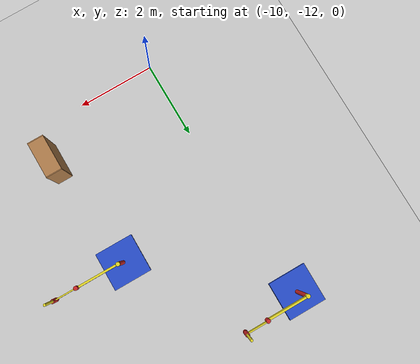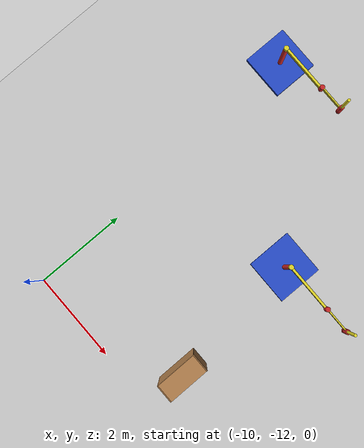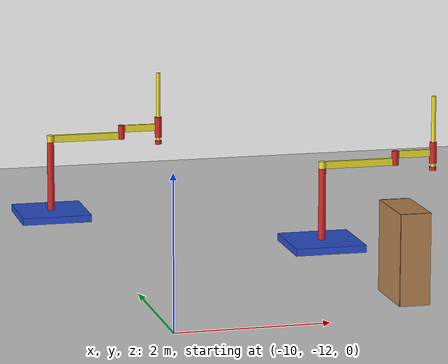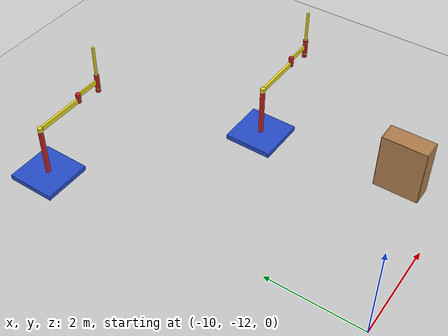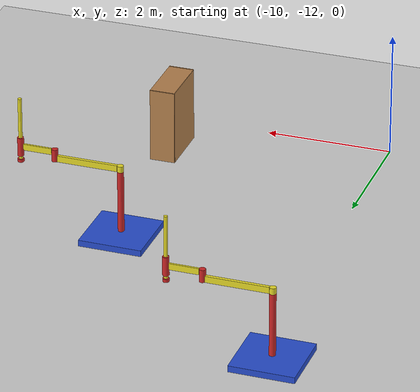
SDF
<sdf version="1.7">
 <world name="default">
  <model name="ground_plane">
   <static>1</static>
   <link name="link">
    <collision name="collision">
     <geometry><plane><normal>0 0 1</normal><size>25 25</size></plane></geometry>
     <surface><friction><ode><mu>100</mu><mu2>50</mu2></ode></friction></surface>
    </collision>
    <visual name="visual">
     <cast_shadows>0</cast_shadows>
     <geometry><plane><normal>0 0 1</normal><size>25 25</size></plane></geometry>
     <material>
      <script><uri>file://media/materials/scripts/gazebo.material</uri><name>Gazebo/Grey</name></script>
     </material>
    </visual>
   </link>
  </model>
  <model name="simple_arm">
   <link name="arm_base">
    <inertial>
     <pose>0 0 0.00099 0 -0 0</pose>
     <inertia><ixx>1.11</ixx><ixy>0</ixy><ixz>0</ixz><iyy>100.11</iyy><iyz>0</iyz><izz>1.01</izz></inertia>
     <mass>101</mass>
    </inertial>
    <collision name="arm_base_geom">
     <pose>0 0 0.05 0 -0 0</pose>
     <geometry><box><size>1 1 0.1</size></box></geometry>
    </collision>
    <visual name="arm_base_geom_visual">
     <pose>0 0 0.05 0 -0 0</pose>
     <geometry><box><size>1 1 0.1</size></box></geometry>
     <material>
      <script><uri>file://media/materials/scripts/gazebo.material</uri><name>Gazebo/Blue</name></script>
     </material>
    </visual>
    <collision name="arm_base_geom_arm_trunk">
     <pose>0 0 0.6 0 -0 0</pose>
     <geometry><cylinder><radius>0.05</radius><length>1</length></cylinder></geometry>
    </collision>
    <visual name="arm_base_geom_arm_trunk_visual">
     <pose>0 0 0.6 0 -0 0</pose>
     <geometry><cylinder><radius>0.05</radius><length>1</length></cylinder></geometry>
     <material>
      <script><uri>file://media/materials/scripts/gazebo.material</uri><name>Gazebo/Red</name></script>
     </material>
    </visual>
   </link>
   <link name="arm_shoulder_pan">
    <pose>0 0 1.1 0 -0 0</pose>
    <inertial>
     <pose>0.045455 0 0 0 -0 0</pose>
     <inertia><ixx>0.011</ixx><ixy>0</ixy><ixz>0</ixz><iyy>0.0225</iyy><iyz>0</iyz><izz>0.0135</izz></inertia>
     <mass>1.1</mass>
    </inertial>
    <collision name="arm_shoulder_pan_geom">
     <pose>0 0 0.05 0 -0 0</pose>
     <geometry><cylinder><radius>0.05</radius><length>0.1</length></cylinder></geometry>
    </collision>
    <visual name="arm_shoulder_pan_geom_visual">
     <pose>0 0 0.05 0 -0 0</pose>
     <geometry><cylinder><radius>0.05</radius><length>0.1</length></cylinder></geometry>
     <material>
      <script><uri>file://media/materials/scripts/gazebo.material</uri><name>Gazebo/Yellow</name></script>
     </material>
    </visual>
    <collision name="arm_shoulder_pan_geom_arm_shoulder">
     <pose>0.55 0 0.05 0 -0 0</pose>
     <geometry><box><size>1 0.05 0.1</size></box></geometry>
    </collision>
    <visual name="arm_shoulder_pan_geom_arm_shoulder_visual">
     <pose>0.55 0 0.05 0 -0 0</pose>
     <geometry><box><size>1 0.05 0.1</size></box></geometry>
     <material>
      <script><uri>file://media/materials/scripts/gazebo.material</uri><name>Gazebo/Yellow</name></script>
     </material>
    </visual>
   </link>
   <link name="arm_elbow_pan">
    <pose>1.05 0 1.1 0 -0 0</pose>
    <inertial>
     <pose>0.0875 0 0.083333 0 -0 0</pose>
     <inertia>
      <ixx>0.031</ixx>
      <ixy>0</ixy>
      <ixz>0.005</ixz>
      <iyy>0.07275</iyy>
      <iyz>0</iyz>
      <izz>0.04475</izz>
     </inertia>
     <mass>1.2</mass>
    </inertial>
    <collision name="arm_elbow_pan_geom">
     <pose>0 0 0.1 0 -0 0</pose>
     <geometry><cylinder><radius>0.05</radius><length>0.2</length></cylinder></geometry>
    </collision>
    <visual name="arm_elbow_pan_geom_visual">
     <pose>0 0 0.1 0 -0 0</pose>
     <geometry><cylinder><radius>0.05</radius><length>0.2</length></cylinder></geometry>
     <material>
      <script><uri>file://media/materials/scripts/gazebo.material</uri><name>Gazebo/Red</name></script>
     </material>
    </visual>
    <collision name="arm_elbow_pan_geom_arm_elbow">
     <pose>0.3 0 0.15 0 -0 0</pose>
     <geometry><box><size>0.5 0.03 0.1</size></box></geometry>
    </collision>
    <visual name="arm_elbow_pan_geom_arm_elbow_visual">
     <pose>0.3 0 0.15 0 -0 0</pose>
     <geometry><box><size>0.5 0.03 0.1</size></box></geometry>
     <material>
      <script><uri>file://media/materials/scripts/gazebo.material</uri><name>Gazebo/Yellow</name></script>
     </material>
    </visual>
    <collision name="arm_elbow_pan_geom_arm_wrist">
     <pose>0.55 0 0.15 0 -0 0</pose>
     <geometry><cylinder><radius>0.05</radius><length>0.3</length></cylinder></geometry>
    </collision>
    <visual name="arm_elbow_pan_geom_arm_wrist_visual">
     <pose>0.55 0 0.15 0 -0 0</pose>
     <geometry><cylinder><radius>0.05</radius><length>0.3</length></cylinder></geometry>
     <material>
      <script><uri>file://media/materials/scripts/gazebo.material</uri><name>Gazebo/Red</name></script>
     </material>
    </visual>
   </link>
   <link name="arm_wrist_lift">
    <pose>1.6 0 1.05 0 -0 0</pose>
    <inertial>
     <inertia><ixx>0.01</ixx><ixy>0</ixy><ixz>0</ixz><iyy>0.01</iyy><iyz>0</iyz><izz>0.001</izz></inertia>
     <mass>0.1</mass>
    </inertial>
    <collision name="arm_wrist_lift_geom">
     <pose>0 0 0.5 0 -0 0</pose>
     <geometry><cylinder><radius>0.03</radius><length>1</length></cylinder></geometry>
    </collision>
    <visual name="arm_wrist_lift_geom_visual">
     <pose>0 0 0.5 0 -0 0</pose>
     <geometry><cylinder><radius>0.03</radius><length>1</length></cylinder></geometry>
     <material>
      <script><uri>file://media/materials/scripts/gazebo.material</uri><name>Gazebo/Yellow</name></script>
     </material>
    </visual>
   </link>
   <link name="arm_wrist_roll">
    <pose>1.6 0 1 0 -0 0</pose>
    <inertial>
     <inertia><ixx>0.01</ixx><ixy>0</ixy><ixz>0</ixz><iyy>0.01</iyy><iyz>0</iyz><izz>0.001</izz></inertia>
     <mass>0.1</mass>
    </inertial>
    <collision name="arm_wrist_roll_geom">
     <pose>0 0 0.025 0 -0 0</pose>
     <geometry><cylinder><radius>0.05</radius><length>0.05</length></cylinder></geometry>
    </collision>
    <visual name="arm_wrist_roll_geom_visual">
     <pose>0 0 0.025 0 -0 0</pose>
     <geometry><cylinder><radius>0.05</radius><length>0.05</length></cylinder></geometry>
     <material>
      <script><uri>file://media/materials/scripts/gazebo.material</uri><name>Gazebo/Red</name></script>
     </material>
    </visual>
   </link>
   <joint name="arm_shoulder_pan_joint" type="revolute">
    <parent>arm_base</parent>
    <child>arm_shoulder_pan</child>
    <axis>
     <dynamics>
      <damping>1</damping>
      <friction>0</friction>
      <spring_reference>0</spring_reference>
      <spring_stiffness>0</spring_stiffness>
     </dynamics>
     <xyz expressed_in="__model__">0 0 1</xyz>
     <limit><lower>-1e+16</lower><upper>1e+16</upper></limit>
    </axis>
   </joint>
   <joint name="arm_elbow_pan_joint" type="revolute">
    <parent>arm_shoulder_pan</parent>
    <child>arm_elbow_pan</child>
    <axis>
     <dynamics>
      <damping>1</damping>
      <friction>0</friction>
      <spring_reference>0</spring_reference>
      <spring_stiffness>0</spring_stiffness>
     </dynamics>
     <xyz expressed_in="__model__">0 0 1</xyz>
     <limit><lower>-1e+16</lower><upper>1e+16</upper></limit>
    </axis>
   </joint>
   <joint name="arm_wrist_lift_joint" type="prismatic">
    <parent>arm_elbow_pan</parent>
    <child>arm_wrist_lift</child>
    <axis>
     <dynamics>
      <damping>1</damping>
      <friction>0</friction>
      <spring_reference>0</spring_reference>
      <spring_stiffness>0</spring_stiffness>
     </dynamics>
     <limit><lower>-0.8</lower><upper>0.1</upper></limit>
     <xyz expressed_in="__model__">0 0 1</xyz>
    </axis>
   </joint>
   <joint name="arm_wrist_roll_joint" type="revolute">
    <parent>arm_wrist_lift</parent>
    <child>arm_wrist_roll</child>
    <axis>
     <dynamics>
      <damping>1</damping>
      <friction>0</friction>
      <spring_reference>0</spring_reference>
      <spring_stiffness>0</spring_stiffness>
     </dynamics>
     <limit><lower>-2.99999</lower><upper>2.99999</upper></limit>
     <xyz expressed_in="__model__">0 0 1</xyz>
    </axis>
   </joint>
   <pose>-10.2618 -5.28194 -0 0 -0 -0.005519</pose>
  </model>
  <model name="simple_arm_clone">
   <link name="arm_base">
    <inertial>
     <pose>0 0 0.00099 0 -0 0</pose>
     <inertia><ixx>1.11</ixx><ixy>0</ixy><ixz>0</ixz><iyy>100.11</iyy><iyz>0</iyz><izz>1.01</izz></inertia>
     <mass>101</mass>
    </inertial>
    <collision name="arm_base_geom">
     <pose>0 0 0.05 0 -0 0</pose>
     <geometry><box><size>1 1 0.1</size></box></geometry>
    </collision>
    <visual name="arm_base_geom_visual">
     <pose>0 0 0.05 0 -0 0</pose>
     <geometry><box><size>1 1 0.1</size></box></geometry>
     <material>
      <script><uri>file://media/materials/scripts/gazebo.material</uri><name>Gazebo/Blue</name></script>
     </material>
    </visual>
    <collision name="arm_base_geom_arm_trunk">
     <pose>0 0 0.6 0 -0 0</pose>
     <geometry><cylinder><radius>0.05</radius><length>1</length></cylinder></geometry>
    </collision>
    <visual name="arm_base_geom_arm_trunk_visual">
     <pose>0 0 0.6 0 -0 0</pose>
     <geometry><cylinder><radius>0.05</radius><length>1</length></cylinder></geometry>
     <material>
      <script><uri>file://media/materials/scripts/gazebo.material</uri><name>Gazebo/Red</name></script>
     </material>
    </visual>
   </link>
   <link name="arm_shoulder_pan">
    <pose>0 0 1.1 0 -0 0</pose>
    <inertial>
     <pose>0.045455 0 0 0 -0 0</pose>
     <inertia><ixx>0.011</ixx><ixy>0</ixy><ixz>0</ixz><iyy>0.0225</iyy><iyz>0</iyz><izz>0.0135</izz></inertia>
     <mass>1.1</mass>
    </inertial>
    <collision name="arm_shoulder_pan_geom">
     <pose>0 0 0.05 0 -0 0</pose>
     <geometry><cylinder><radius>0.05</radius><length>0.1</length></cylinder></geometry>
    </collision>
    <visual name="arm_shoulder_pan_geom_visual">
     <pose>0 0 0.05 0 -0 0</pose>
     <geometry><cylinder><radius>0.05</radius><length>0.1</length></cylinder></geometry>
     <material>
      <script><uri>file://media/materials/scripts/gazebo.material</uri><name>Gazebo/Yellow</name></script>
     </material>
    </visual>
    <collision name="arm_shoulder_pan_geom_arm_shoulder">
     <pose>0.55 0 0.05 0 -0 0</pose>
     <geometry><box><size>1 0.05 0.1</size></box></geometry>
    </collision>
    <visual name="arm_shoulder_pan_geom_arm_shoulder_visual">
     <pose>0.55 0 0.05 0 -0 0</pose>
     <geometry><box><size>1 0.05 0.1</size></box></geometry>
     <material>
      <script><uri>file://media/materials/scripts/gazebo.material</uri><name>Gazebo/Yellow</name></script>
     </material>
    </visual>
   </link>
   <link name="arm_elbow_pan">
    <pose>1.05 0 1.1 0 -0 0</pose>
    <inertial>
     <pose>0.0875 0 0.083333 0 -0 0</pose>
     <inertia>
      <ixx>0.031</ixx>
      <ixy>0</ixy>
      <ixz>0.005</ixz>
      <iyy>0.07275</iyy>
      <iyz>0</iyz>
      <izz>0.04475</izz>
     </inertia>
     <mass>1.2</mass>
    </inertial>
    <collision name="arm_elbow_pan_geom">
     <pose>0 0 0.1 0 -0 0</pose>
     <geometry><cylinder><radius>0.05</radius><length>0.2</length></cylinder></geometry>
    </collision>
    <visual name="arm_elbow_pan_geom_visual">
     <pose>0 0 0.1 0 -0 0</pose>
     <geometry><cylinder><radius>0.05</radius><length>0.2</length></cylinder></geometry>
     <material>
      <script><uri>file://media/materials/scripts/gazebo.material</uri><name>Gazebo/Red</name></script>
     </material>
    </visual>
    <collision name="arm_elbow_pan_geom_arm_elbow">
     <pose>0.3 0 0.15 0 -0 0</pose>
     <geometry><box><size>0.5 0.03 0.1</size></box></geometry>
    </collision>
    <visual name="arm_elbow_pan_geom_arm_elbow_visual">
     <pose>0.3 0 0.15 0 -0 0</pose>
     <geometry><box><size>0.5 0.03 0.1</size></box></geometry>
     <material>
      <script><uri>file://media/materials/scripts/gazebo.material</uri><name>Gazebo/Yellow</name></script>
     </material>
    </visual>
    <collision name="arm_elbow_pan_geom_arm_wrist">
     <pose>0.55 0 0.15 0 -0 0</pose>
     <geometry><cylinder><radius>0.05</radius><length>0.3</length></cylinder></geometry>
    </collision>
    <visual name="arm_elbow_pan_geom_arm_wrist_visual">
     <pose>0.55 0 0.15 0 -0 0</pose>
     <geometry><cylinder><radius>0.05</radius><length>0.3</length></cylinder></geometry>
     <material>
      <script><uri>file://media/materials/scripts/gazebo.material</uri><name>Gazebo/Red</name></script>
     </material>
    </visual>
   </link>
   <link name="arm_wrist_lift">
    <pose>1.6 0 1.05 0 -0 0</pose>
    <inertial>
     <inertia><ixx>0.01</ixx><ixy>0</ixy><ixz>0</ixz><iyy>0.01</iyy><iyz>0</iyz><izz>0.001</izz></inertia>
     <mass>0.1</mass>
    </inertial>
    <collision name="arm_wrist_lift_geom">
     <pose>0 0 0.5 0 -0 0</pose>
     <geometry><cylinder><radius>0.03</radius><length>1</length></cylinder></geometry>
    </collision>
    <visual name="arm_wrist_lift_geom_visual">
     <pose>0 0 0.5 0 -0 0</pose>
     <geometry><cylinder><radius>0.03</radius><length>1</length></cylinder></geometry>
     <material>
      <script><uri>file://media/materials/scripts/gazebo.material</uri><name>Gazebo/Yellow</name></script>
     </material>
    </visual>
   </link>
   <link name="arm_wrist_roll">
    <pose>1.6 0 1 0 -0 0</pose>
    <inertial>
     <inertia><ixx>0.01</ixx><ixy>0</ixy><ixz>0</ixz><iyy>0.01</iyy><iyz>0</iyz><izz>0.001</izz></inertia>
     <mass>0.1</mass>
    </inertial>
    <collision name="arm_wrist_roll_geom">
     <pose>0 0 0.025 0 -0 0</pose>
     <geometry><cylinder><radius>0.05</radius><length>0.05</length></cylinder></geometry>
    </collision>
    <visual name="arm_wrist_roll_geom_visual">
     <pose>0 0 0.025 0 -0 0</pose>
     <geometry><cylinder><radius>0.05</radius><length>0.05</length></cylinder></geometry>
     <material>
      <script><uri>file://media/materials/scripts/gazebo.material</uri><name>Gazebo/Red</name></script>
     </material>
    </visual>
   </link>
   <joint name="arm_shoulder_pan_joint" type="revolute">
    <parent>arm_base</parent>
    <child>arm_shoulder_pan</child>
    <axis>
     <dynamics>
      <damping>1</damping>
      <friction>0</friction>
      <spring_reference>0</spring_reference>
      <spring_stiffness>0</spring_stiffness>
     </dynamics>
     <xyz expressed_in="__model__">0 0 1</xyz>
     <limit><lower>-1e+16</lower><upper>1e+16</upper></limit>
    </axis>
   </joint>
   <joint name="arm_elbow_pan_joint" type="revolute">
    <parent>arm_shoulder_pan</parent>
    <child>arm_elbow_pan</child>
    <axis>
     <dynamics>
      <damping>1</damping>
      <friction>0</friction>
      <spring_reference>0</spring_reference>
      <spring_stiffness>0</spring_stiffness>
     </dynamics>
     <xyz expressed_in="__model__">0 0 1</xyz>
     <limit><lower>-1e+16</lower><upper>1e+16</upper></limit>
    </axis>
   </joint>
   <joint name="arm_wrist_lift_joint" type="prismatic">
    <parent>arm_elbow_pan</parent>
    <child>arm_wrist_lift</child>
    <axis>
     <dynamics>
      <damping>1</damping>
      <friction>0</friction>
      <spring_reference>0</spring_reference>
      <spring_stiffness>0</spring_stiffness>
     </dynamics>
     <limit><lower>-0.8</lower><upper>0.1</upper></limit>
     <xyz expressed_in="__model__">0 0 1</xyz>
    </axis>
   </joint>
   <joint name="arm_wrist_roll_joint" type="revolute">
    <parent>arm_wrist_lift</parent>
    <child>arm_wrist_roll</child>
    <axis>
     <dynamics>
      <damping>1</damping>
      <friction>0</friction>
      <spring_reference>0</spring_reference>
      <spring_stiffness>0</spring_stiffness>
     </dynamics>
     <limit><lower>-2.99999</lower><upper>2.99999</upper></limit>
     <xyz expressed_in="__model__">0 0 1</xyz>
    </axis>
   </joint>
   <pose>-6.96425 -8.0339 -0 0 0 -0.007754</pose>
  </model>
  <model name="bookshelf_clone">
   <static>1</static>
   <link name="link">
    <inertial><mass>1</mass></inertial>
    <collision name="back">
     <pose>0 0.005 0.6 0 -0 0</pose>
     <geometry><box><size>0.9 0.01 1.2</size></box></geometry>
    </collision>
    <visual name="visual1">
     <pose>0 0.005 0.6 0 -0 0</pose>
     <geometry><box><size>0.9 0.01 1.2</size></box></geometry>
     <material>
      <script><uri>file://media/materials/scripts/gazebo.material</uri><name>Gazebo/Wood</name></script>
     </material>
    </visual>
    <collision name="left_side">
     <pose>0.45 -0.195 0.6 0 -0 0</pose>
     <geometry><box><size>0.02 0.4 1.2</size></box></geometry>
    </collision>
    <visual name="visual2">
     <pose>0.45 -0.195 0.6 0 -0 0</pose>
     <geometry><box><size>0.02 0.4 1.2</size></box></geometry>
     <material>
      <script><uri>file://media/materials/scripts/gazebo.material</uri><name>Gazebo/Wood</name></script>
     </material>
    </visual>
    <collision name="right_side">
     <pose>-0.45 -0.195 0.6 0 -0 0</pose>
     <geometry><box><size>0.02 0.4 1.2</size></box></geometry>
    </collision>
    <visual name="visual3">
     <pose>-0.45 -0.195 0.6 0 -0 0</pose>
     <geometry><box><size>0.02 0.4 1.2</size></box></geometry>
     <material>
      <script><uri>file://media/materials/scripts/gazebo.material</uri><name>Gazebo/Wood</name></script>
     </material>
    </visual>
    <collision name="bottom">
     <pose>0 -0.195 0.03 0 -0 0</pose>
     <geometry><box><size>0.88 0.4 0.06</size></box></geometry>
    </collision>
    <visual name="visual4">
     <pose>0 -0.195 0.03 0 -0 0</pose>
     <geometry><box><size>0.88 0.4 0.06</size></box></geometry>
     <material>
      <script><uri>file://media/materials/scripts/gazebo.material</uri><name>Gazebo/Wood</name></script>
     </material>
    </visual>
    <collision name="top">
     <pose>0 -0.195 1.19 0 -0 0</pose>
     <geometry><box><size>0.88 0.4 0.02</size></box></geometry>
    </collision>
    <visual name="visual5">
     <pose>0 -0.195 1.19 0 -0 0</pose>
     <geometry><box><size>0.88 0.4 0.02</size></box></geometry>
     <material>
      <script><uri>file://media/materials/scripts/gazebo.material</uri><name>Gazebo/Wood</name></script>
     </material>
    </visual>
    <collision name="low_shelf">
     <pose>0 -0.195 0.43 0 -0 0</pose>
     <geometry><box><size>0.88 0.4 0.02</size></box></geometry>
    </collision>
    <visual name="visual6">
     <pose>0 -0.195 0.43 0 -0 0</pose>
     <geometry><box><size>0.88 0.4 0.02</size></box></geometry>
     <material>
      <script><uri>file://media/materials/scripts/gazebo.material</uri><name>Gazebo/Wood</name></script>
     </material>
    </visual>
    <collision name="high_shelf">
     <pose>0 -0.195 0.8 0 -0 0</pose>
     <geometry><box><size>0.88 0.4 0.02</size></box></geometry>
    </collision>
    <visual name="visual7">
     <pose>0 -0.195 0.8 0 -0 0</pose>
     <geometry><box><size>0.88 0.4 0.02</size></box></geometry>
     <material>
      <script><uri>file://media/materials/scripts/gazebo.material</uri><name>Gazebo/Wood</name></script>
     </material>
    </visual>
   </link>
   <pose>-6.91893 -11.004 0 0 -0 1.57</pose>
  </model>
 </world>
</sdf>
